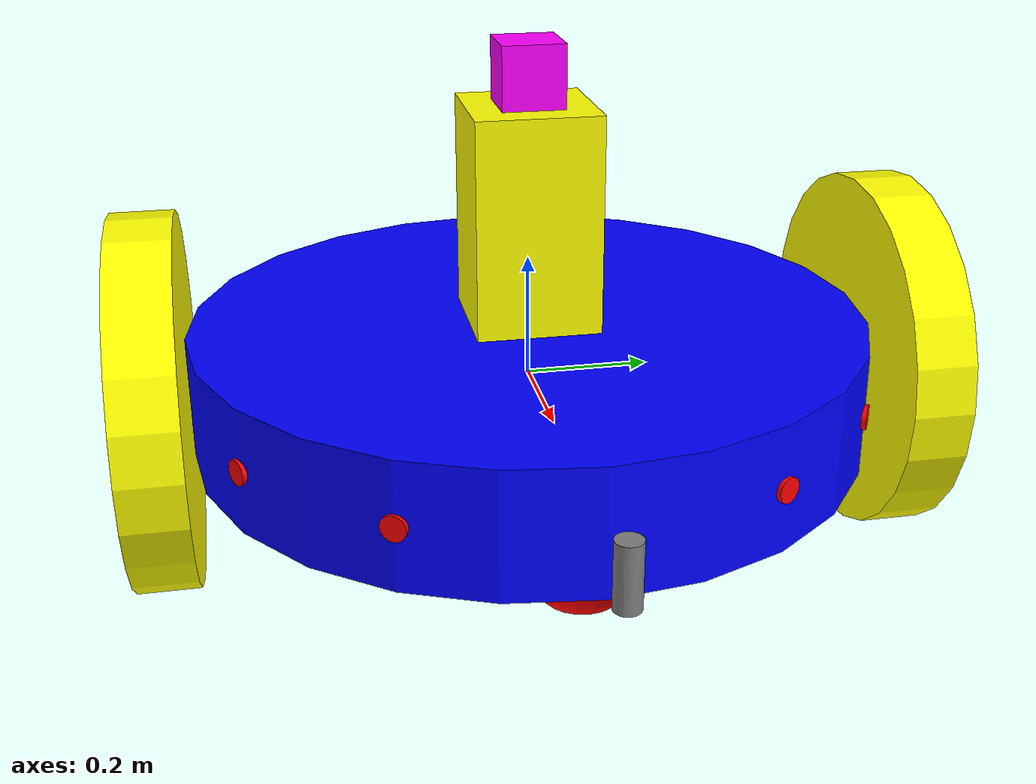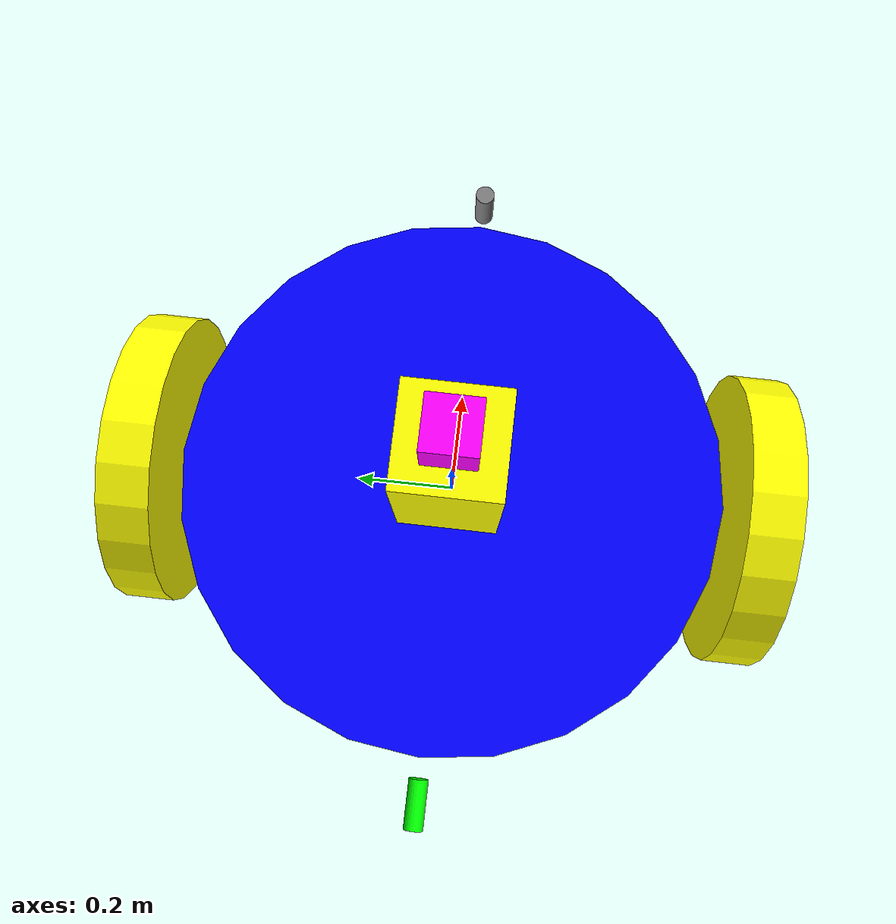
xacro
<?xml version="1.0"?>
<robot name="vc_robot">
  <link name="base_link" />
  <link name="plate">
    <visual>
      <origin rpy="0 0 0" xyz="0 0 0" />
      <geometry>
        <cylinder radius="0.55" length="0.2" />
      </geometry>
      <material name="blue">
        <color rgba="0 0 1 1" />
      </material>
    </visual>
    <collision>
      <origin rpy="0 0 0" xyz="0 0 0" />
      <geometry>
        <cylinder radius="0.55" length="0.2" />
      </geometry>
    </collision>
    <inertial>
      <mass value="0.2" />
      <inertia ixx="0.0158" ixy="0.0" ixz="0.0" iyy="0.0158" iyz="0.0" izz="0.03" />
    </inertial>
  </link>
  <link name="leftwheel">
    <visual>
      <origin rpy="0 0 0" xyz="0 0 0" />
      <geometry>
        <cylinder radius= "0.3"  length= "0.1"  />
      </geometry>
      <material name="yellow">
        <color rgba="1 1 0 1" />
      </material>
    </visual>
    <collision>
      <origin rpy="0 0 0" xyz="0 0 0" />
      <geometry>
        <cylinder radius= "0.3"  length= "0.1"  />
      </geometry>
    </collision>
    <inertial>
      <mass value="0.2" />
      <inertia ixx="0.9624" ixy="0.0" ixz="0.0" iyy="1.5024" iyz="0.0" izz="2.46" />
    </inertial>
  </link>
  <link name="rightwheel">
    <visual>
      <origin rpy="0 0 0" xyz="0 0 0" />
      <geometry>
        <cylinder radius= "0.3"  length= "0.1"  />
      </geometry>
      <material name="yellow">
        <color rgba="1 1 0 1" />
      </material>
    </visual>
    <collision>
      <origin rpy="0 0 0" xyz="0 0 0" />
      <geometry>
        <cylinder radius= "0.3"  length= "0.1"  />
      </geometry>
    </collision>
    <inertial>
      <mass value="0.2" />
      <inertia ixx="0.9624" ixy="0.0" ixz="0.0" iyy="1.5024" iyz="0.0" izz="2.46" />
    </inertial>
  </link>
  <link name="front_mount">
    <visual>
      <origin rpy="0 0 0" xyz="0 0 0" />
      <geometry>
        <sphere radius = ".1"  />
      </geometry>
      <material name="red">
        <color rgba="1 0 0 1" />
      </material>
    </visual>
    <collision>
      <origin rpy="0 0 0" xyz="0 0 0" />
      <geometry>
        <sphere radius = ".2"  />
      </geometry>
    </collision>
    <inertial>
      <mass value="0.2" />
      <inertia ixx="0.9624" ixy="0.0" ixz="0.0" iyy="1.5024" iyz="0.0" izz="2.46" />
    </inertial>
  </link>
  <link name="back_mount">
    <visual>
      <origin rpy="0 0 0" xyz="0 0 0" />
      <geometry>
        <sphere radius = ".1"  />
      </geometry>
      <material name="red">
        <color rgba="1 0 0 1" />
      </material>
    </visual>
    <collision>
      <origin rpy="0 0 0" xyz="0 0 0" />
      <geometry>
        <sphere radius = ".2"  />
      </geometry>
    </collision>
    <inertial>
      <mass value="0.2" />
      <inertia ixx="0.9624" ixy="0.0" ixz="0.0" iyy="1.5024" iyz="0.0" izz="2.46" />
    </inertial>
  </link>
  <link name="stand">
    <visual>
      <origin xyz="0 0 0" rpy="0 0 0" />
      <geometry>
        <box size="0.2 0.2 0.5" />
      </geometry>
      <material name="yellow">
        <color rgba="1 1 0 1" />
      </material>
    </visual>
    <collision>
      <origin rpy="0 0 0" xyz="0 0 0" />
      <geometry>
        <box size="0.2 0.2 0.5" />
      </geometry>
    </collision>
    <inertial>
      <mass value="0.01" />
      <inertia ixx="0.9624" ixy="0.0" ixz="0.0" iyy="1.5024" iyz="0.0" izz="2.46" />
    </inertial>
  </link>
  <link name="hokuyo_link">
    <visual>
      <origin rpy="0 0 0" xyz="0 0 0" />
      <geometry>
        <box size="0.1 0.1 0.1" />
      </geometry>
      <material name="purple">
        <color rgba="1 0 1 1" />
      </material>
    </visual>
    <collision>
      <origin rpy="0 0 0" xyz="0 0 0" />
      <geometry>
        <box size="0.1 0.1 0.1" />
      </geometry>
    </collision>
    <inertial>
      <mass value="0.2" />
      <inertia ixx="0.9624" ixy="0.0" ixz="0.0" iyy="1.5024" iyz="0.0" izz="2.46" />
    </inertial>
  </link>
  <link name="ultrasonic1">
    <visual>
      <origin xyz="0 0 0" rpy="0 1.5708 0" />
      <geometry>
        <cylinder radius="0.02" length="0.01" />
      </geometry>
      <material name="red">
        <color rgba="1 0 0 1" />
      </material>
    </visual>
    <collision>
      <origin xyz="0 0 0" rpy="0 1.5708 0" />
      <geometry>
        <cylinder radius="0.02" length="0.01" />
      </geometry>
    </collision>
    <inertial>
      <mass value="0.01" />
      <inertia ixx="0.00000108" ixy="0.0" ixz="0.0" iyy="0.00000108" iyz="0.0" izz="0.000002" />
    </inertial>
  </link>
  <link name="ultrasonic2">
    <visual>
      <origin xyz="0 0 0" rpy="0 1.5708 0" />
      <geometry>
        <cylinder radius="0.02" length="0.01" />
      </geometry>
      <material name="red">
        <color rgba="1 0 0 1" />
      </material>
    </visual>
    <collision>
      <origin xyz="0 0 0" rpy="0 1.5708 0" />
      <geometry>
        <cylinder radius="0.02" length="0.01" />
      </geometry>
    </collision>
    <inertial>
      <mass value="0.01" />
      <inertia ixx="0.00000108" ixy="0.0" ixz="0.0" iyy="0.00000108" iyz="0.0" izz="0.000002" />
    </inertial>
  </link>
  <link name="ultrasonic3">
    <visual>
      <origin xyz="0 0 0" rpy="0 1.5708 0" />
      <geometry>
        <cylinder radius="0.02" length="0.01" />
      </geometry>
      <material name="red">
        <color rgba="1 0 0 1" />
      </material>
    </visual>
    <collision>
      <origin xyz="0 0 0" rpy="0 1.5708 0" />
      <geometry>
        <cylinder radius="0.02" length="0.01" />
      </geometry>
    </collision>
    <inertial>
      <mass value="0.01" />
      <inertia ixx="0.00000108" ixy="0.0" ixz="0.0" iyy="0.00000108" iyz="0.0" izz="0.000002" />
    </inertial>
  </link>
  <link name="ultrasonic4">
    <visual>
      <origin xyz="0 0 0" rpy="0 1.5708 0" />
      <geometry>
        <cylinder radius="0.02" length="0.01" />
      </geometry>
      <material name="red">
        <color rgba="1 0 0 1" />
      </material>
    </visual>
    <collision>
      <origin xyz="0 0 0" rpy="0 1.5708 0" />
      <geometry>
        <cylinder radius="0.02" length="0.01" />
      </geometry>
    </collision>
    <inertial>
      <mass value="0.01" />
      <inertia ixx="0.00000108" ixy="0.0" ixz="0.0" iyy="0.00000108" iyz="0.0" izz="0.000002" />
    </inertial>
  </link>
  <link name="ultrasonic5">
    <visual>
      <origin xyz="0 0 0" rpy="0 1.5708 0" />
      <geometry>
        <cylinder radius="0.02" length="0.01" />
      </geometry>
      <material name="red">
        <color rgba="1 0 0 1" />
      </material>
    </visual>
    <collision>
      <origin xyz="0 0 0" rpy="0 1.5708 0" />
      <geometry>
        <cylinder radius="0.02" length="0.01" />
      </geometry>
    </collision>
    <inertial>
      <mass value="0.01" />
      <inertia ixx="0.00000108" ixy="0.0" ixz="0.0" iyy="0.00000108" iyz="0.0" izz="0.000002" />
    </inertial>
  </link>
  <link name="ultrasonic6">
    <visual>
      <origin xyz="0 0 0" rpy="0 1.5708 0" />
      <geometry>
        <cylinder radius="0.02" length="0.01" />
      </geometry>
      <material name="red">
        <color rgba="1 0 0 1" />
      </material>
    </visual>
    <collision>
      <origin xyz="0 0 0" rpy="0 1.5708 0" />
      <geometry>
        <cylinder radius="0.02" length="0.01" />
      </geometry>
    </collision>
    <inertial>
      <mass value="0.01" />
      <inertia ixx="0.00000108" ixy="0.0" ixz="0.0" iyy="0.00000108" iyz="0.0" izz="0.000002" />
    </inertial>
  </link>
  <link name="ultrasonic7">
    <visual>
      <origin xyz="0 0 0" rpy="0 1.5708 0" />
      <geometry>
        <cylinder radius="0.02" length="0.01" />
      </geometry>
      <material name="red">
        <color rgba="1 0 0 1" />
      </material>
    </visual>
    <collision>
      <origin xyz="0 0 0" rpy="0 1.5708 0" />
      <geometry>
        <cylinder radius="0.02" length="0.01" />
      </geometry>
    </collision>
    <inertial>
      <mass value="0.01" />
      <inertia ixx="0.00000108" ixy="0.0" ixz="0.0" iyy="0.00000108" iyz="0.0" izz="0.000002" />
    </inertial>
  </link>
  <link name="ultrasonic8">
    <visual>
      <origin xyz="0 0 0" rpy="0 1.5708 0" />
      <geometry>
        <cylinder radius="0.02" length="0.01" />
      </geometry>
      <material name="red">
        <color rgba="1 0 0 1" />
      </material>
    </visual>
    <collision>
      <origin xyz="0 0 0" rpy="0 1.5708 0" />
      <geometry>
        <cylinder radius="0.02" length="0.01" />
      </geometry>
    </collision>
    <inertial>
      <mass value="0.01" />
      <inertia ixx="0.00000108" ixy="0.0" ixz="0.0" iyy="0.00000108" iyz="0.0" izz="0.000002" />
    </inertial>
  </link>
  <link name="stereo_camera">
    <visual>
      <origin xyz="0 0 0" rpy="0 0 0" />
      <geometry>
        <cylinder radius="0.02" length="0.1" />
      </geometry>
      <material name="grey">
        <color rgba="0.5 0.5 0.5 1" />
      </material>
    </visual>
    <collision>
      <origin xyz="0 0 0" rpy="0 0 0" />
      <geometry>
        <cylinder radius="0.02" length="0.1" />
      </geometry>
    </collision>
    <inertial>
      <mass value="0.01" />
      <inertia ixx="0.00000108" ixy="0.0" ixz="0.0" iyy="0.00000108" iyz="0.0" izz="0.000002" />
    </inertial>
  </link>
  <link name="camera_depth"/>
  <link name="monocular_camera">
    <visual>
      <origin xyz="0 0 0" rpy="0 1.5708 0" />
      <geometry>
        <cylinder radius="0.02" length="0.1" />
      </geometry>
      <material name="green">
        <color rgba="0 1 0 1" />
      </material>
    </visual>
    <collision>
      <origin xyz="0 0 0" rpy="0 1.5708 0" />
      <geometry>
        <cylinder radius="0.02" length="0.1" />
      </geometry>
    </collision>
    <inertial>
      <mass value="0.01" />
      <inertia ixx="0.00000108" ixy="0.0" ixz="0.0" iyy="0.00000108" iyz="0.0" izz="0.000002" />
    </inertial>
  </link>
  <joint name="weld" type="fixed">
    <parent link="base_link" />
    <child link="plate" />
    <origin xyz="0 0 0" />
    <axis xyz="0 0 0" />
  </joint>
  <joint name="stereo_connection" type="fixed">
    <parent link="plate" />
    <child link="stereo_camera" />
    <origin xyz="0.65 0 0" rpy="0 0 0" />
    <axis xyz="0 0 0" />
  </joint>
<joint name="camera_depth_connection" type="fixed">
    <parent link="stereo_camera" />
    <child link="camera_depth" />
    <origin xyz="0 0 0.25" rpy="-1.5708 0 -1.5708" />
  </joint>
  <joint name="monocular_connection" type="fixed">
    <parent link="plate" />
    <child link="monocular_camera" />
    <origin xyz="-0.65 0 0" rpy="3.14 3.14 0" />
    <axis xyz="0 0 0" />
  </joint>
  <joint name="ultrasonic1_connection" type="fixed">
    <parent link="plate" />
    <child link="ultrasonic1" />
    <origin xyz="0.275 0.4763 0" rpy="0 0 1.0472" />
    <axis xyz="0 0 0" />
  </joint>
  <joint name="ultrasonic2_connection" type="fixed">
    <parent link="plate" />
    <child link="ultrasonic2" />
    <origin xyz="0.4763 0.275 0" rpy="0 0 0.523599" />
    <axis xyz="0 0 0" />
  </joint>
  <joint name="ultrasonic3_connection" type="fixed">
    <parent link="plate" />
    <child link="ultrasonic3" />
    <origin xyz="0.4763 -0.275 0" rpy="0 0 -0.523599" />
    <axis xyz="0 0 0" />
  </joint>
  <joint name="ultrasonic4_connection" type="fixed">
    <parent link="plate" />
    <child link="ultrasonic4" />
    <origin xyz="0.275 -0.4763 0" rpy="0 0 -1.0472" />
    <axis xyz="0 0 0" />
  </joint>
  <joint name="ultrasonic5_connection" type="fixed">
    <parent link="plate" />
    <child link="ultrasonic5" />
    <origin xyz="-0.275 -0.4763 0" rpy="0 0 -2.094398" />
    <axis xyz="0 0 0" />
  </joint>
  <joint name="ultrasonic6_connection" type="fixed">
    <parent link="plate" />
    <child link="ultrasonic6" />
    <origin xyz="-0.4763 -0.275 0" rpy="0 0 -2.617997" />
    <axis xyz="0 0 0" />
  </joint>
  <joint name="ultrasonic7_connection" type="fixed">
    <parent link="plate" />
    <child link="ultrasonic7" />
    <origin xyz="-0.4763 0.275 0" rpy="0 0 2.617997" />
    <axis xyz="0 0 0" />
  </joint>
  <joint name="ultrasonic8_connection" type="fixed">
    <parent link="plate" />
    <child link="ultrasonic8" />
    <origin xyz="-0.275 0.4763 0" rpy="0 0 2.094398" />
    <axis xyz="0 0 0" />
  </joint>
  <joint name="stand_connection" type="fixed">
    <parent link="plate" />
    <child link="stand" />
    <origin xyz="0 0 0.2" />
    <axis xyz="0 0 0" />
  </joint>
  <joint name="hokuyo" type="fixed">
    <parent link="stand" />
    <child link="hokuyo_link" />
    <origin xyz="0 0 0.3" />
    <axis xyz="0 0 0" />
  </joint>
  <joint name="leftwheel_joint" type="continuous">
    <parent link="plate" />
    <child link="leftwheel" />
    <origin rpy="1.5708 0 0" xyz="0 -0.6 0.0" />
    <axis xyz="0 0 1" />
    <dynamics damping="100" friction="100" />
  </joint>
  <joint name="rightwheel_joint" type="continuous">
    <parent link="plate" />
    <child link="rightwheel" />
    <origin rpy="1.5708 0 0" xyz="0 0.6 0.0" />
    <axis xyz="0 0 1" />
    <dynamics damping="100" friction="100" />
  </joint>
  <joint name="frontmountweld" type="fixed">
    <parent link="plate" />
    <child link="front_mount" />
    <origin xyz="-.4 0 -.1" />
    <axis xyz="0 0 0" />
  </joint>
  <joint name="backmountweld" type="fixed">
    <parent link="plate" />
    <child link="back_mount" />
    <origin xyz=".4 0 -.1" />
    <axis xyz="0 0 0" />
  </joint>
  <gazebo reference="plate">
    <mu1 value="2.0" />
    <mu2 value="4.0" />
    <kp value="1000000000" />
    <kd value="1000000.0" />
    <material>Gazebo/Blue</material>
  </gazebo>
  <gazebo reference="stand">
    <mu1 value="2.0" />
    <mu2 value="4.0" />
    <kp value="1000000000" />
    <kd value="1000000.0" />
    <material>Gazebo/Yellow</material>
  </gazebo>
  <gazebo reference="stereo_camera">
    <mu1 value="2.0" />
    <mu2 value="4.0" />
    <kp value="1000000000" />
    <kd value="1000000.0" />
    <material>Gazebo/Grey</material>
  </gazebo>
  <gazebo reference="monocular_camera">
    <mu1 value="2.0" />
    <mu2 value="4.0" />
    <kp value="1000000000" />
    <kd value="1000000.0" />
    <material>Gazebo/Green</material>
  </gazebo>
  <gazebo reference="ultrasonic1">
    <mu1 value="2.0" />
    <mu2 value="4.0" />
    <kp value="1000000000" />
    <kd value="1000000.0" />
    <material>Gazebo/Red</material>
  </gazebo>
  <gazebo reference="ultrasonic2">
    <mu1 value="2.0" />
    <mu2 value="4.0" />
    <kp value="1000000000" />
    <kd value="1000000.0" />
    <material>Gazebo/Red</material>
  </gazebo>
  <gazebo reference="ultrasonic3">
    <mu1 value="2.0" />
    <mu2 value="4.0" />
    <kp value="1000000000" />
    <kd value="1000000.0" />
    <material>Gazebo/Red</material>
  </gazebo>
  <gazebo reference="ultrasonic4">
    <mu1 value="2.0" />
    <mu2 value="4.0" />
    <kp value="1000000000" />
    <kd value="1000000.0" />
    <material>Gazebo/Red</material>
  </gazebo>
  <gazebo reference="ultrasonic5">
    <mu1 value="2.0" />
    <mu2 value="4.0" />
    <kp value="1000000000" />
    <kd value="1000000.0" />
    <material>Gazebo/Red</material>
  </gazebo>
  <gazebo reference="ultrasonic6">
    <mu1 value="2.0" />
    <mu2 value="4.0" />
    <kp value="1000000000" />
    <kd value="1000000.0" />
    <material>Gazebo/Red</material>
  </gazebo>
  <gazebo reference="ultrasonic7">
    <mu1 value="2.0" />
    <mu2 value="4.0" />
    <kp value="1000000000" />
    <kd value="1000000.0" />
    <material>Gazebo/Red</material>
  </gazebo>
  <gazebo reference="ultrasonic8">
    <mu1 value="2.0" />
    <mu2 value="4.0" />
    <kp value="1000000000" />
    <kd value="1000000.0" />
    <material>Gazebo/Red</material>
  </gazebo>
  <gazebo reference="hokuyo_link">
    <mu1 value="2.0" />
    <mu2 value="4.0" />
    <kp value="1000000000" />
    <kd value="1000000.0" />
    <material>Gazebo/Purple</material>
  </gazebo>
  <gazebo reference="leftwheel">
    <mu1 value="0.2" />
    <mu2 value="0.4" />
    <kp value="1000000000" />
    <kd value="1000000.0" />
    <material>Gazebo/Yellow</material>
  </gazebo>
  <gazebo reference="rightwheel">
    <mu1 value="0.2" />
    <mu2 value="0.4" />
    <kp value="1000000000" />
    <kd value="1000000.0" />
    <material>Gazebo/Yellow</material>
  </gazebo>
  <gazebo reference="front_mount">
    <mu1 value="0.0" />
    <mu2 value="0.0" />
    <kp value="1000000000" />
    <kd value="1000000.0" />
    <material>Gazebo/Red</material>
  </gazebo>
  <gazebo reference="back_mount">
    <mu1 value="0.0" />
    <mu2 value="0.0" />
    <kp value="1000000000" />
    <kd value="1000000.0" />
    <material>Gazebo/Red</material>
  </gazebo>
  <gazebo>
    <plugin name="differential_drive_controller" filename="libgazebo_ros_diff_drive.so">
      <!-- Plugin update rate in Hz -->
      <updateRate>20</updateRate>
      <!-- Name of left joint, defaults to `left_joint` -->
      <leftJoint>leftwheel_joint</leftJoint>
      <!-- Name of right joint, defaults to `right_joint` -->
      <rightJoint>rightwheel_joint</rightJoint>
      <!-- The distance from the center of one wheel to the other, in meters, defaults to 0.34 m -->
      <wheelSeparation>0.5380</wheelSeparation>
      <!-- Diameter of the wheels, in meters, defaults to 0.15 m -->
      <wheelDiameter>0.6</wheelDiameter>
      <!-- Wheel acceleration, in rad/s^2, defaults to 0.0 rad/s^2 -->
      <wheelAcceleration>1.0</wheelAcceleration>
      <!-- Maximum torque which the wheels can produce, in Nm, defaults to 5 Nm -->
      <wheelTorque>20</wheelTorque>
      <!-- Topic to receive geometry_msgs/Twist message commands, defaults to `cmd_vel` -->
      <commandTopic>vc_robot/cmd_vel</commandTopic>
      <!-- Topic to publish nav_msgs/Odometry messages, defaults to `odom` -->
      <odometryTopic>odom</odometryTopic>
      <!-- Odometry frame, defaults to `odom` -->
      <odometryFrame>odom</odometryFrame>
      <!-- Robot frame to calculate odometry from, defaults to `base_footprint` -->
      <robotBaseFrame>base_link</robotBaseFrame>
      <!-- Odometry source, 0 for ENCODER, 1 for WORLD, defaults to WORLD -->
      <odometrySource>1</odometrySource>
      <!-- Set to true to publish transforms for the wheel links, defaults to false -->
      <publishWheelTF>false</publishWheelTF>
      <!-- Set to true to publish transforms for the odometry, defaults to true -->
      <publishOdom>true</publishOdom>
      <!-- Set to true to publish sensor_msgs/JointState on /joint_states for the wheel joints, defaults to false -->
      <publishWheelJointState>false</publishWheelJointState>
      <!-- Set to true to swap right and left wheels, defaults to true -->
      <legacyMode>true</legacyMode>
      <pose_covariance_diagonal>[1.0, 1.0, 0.0, 0.0, 0.0, 1.0]</pose_covariance_diagonal>
      <twist_covariance_diagonal>[0.01, 0.0, 0.0, 0.0, 0.0, 0.1]</twist_covariance_diagonal>
      <publishTf>1</publishTf>
      <publishOdomTF>true</publishOdomTF>
    </plugin>
  </gazebo>
  <gazebo reference="stereo_camera">
    <sensor name="stereo_camera" type="depth">
    <alwaysOn>true</alwaysOn>
<visualize>true</visualize>
      <update_rate>30.0</update_rate>
      <camera>
        <horizontal_fov>1.3962634</horizontal_fov>
        <image>
          <width>640</width>
          <height>480</height>
          <format>R8G8B8</format>
        </image>
        <clip>
          <near>0.01</near>
          <far>100</far>
        </clip>
        <noise>
          <type>gaussian</type>
          <stddev>0.007</stddev>
        </noise>
      </camera>
      <plugin name="stereo_camera_controller" filename="libgazebo_ros_openni_kinect.so">
        <alwaysOn>true</alwaysOn>
        <updateRate>30.0</updateRate>
        <cameraName>stereo_camera_ir</cameraName>
        <imageTopicName>/vc_robot/stereo_camera/color/image_raw</imageTopicName>
        <cameraInfoTopicName>/vc_robot/stereo_camera/color/camera_info</cameraInfoTopicName>
        <depthImageTopicName>/vc_robot/stereo_camera/depth/image_raw</depthImageTopicName>
        <depthImageInfoTopicName>/vc_robot/stereo_camera/depth/camera_info</depthImageInfoTopicName>
        <pointCloudTopicName>/vc_robot/stereo_camera/depth/points</pointCloudTopicName>
        <frameName>camera_depth</frameName>
        <pointCloudCutoff>0.8</pointCloudCutoff>
        <pointCloudCutoffMax>3.5</pointCloudCutoffMax>
        <distortionK1>0.00000001</distortionK1>
        <distortionK2>0.00000001</distortionK2>
        <distortionK3>0.00000001</distortionK3>
        <distortionT1>0.00000001</distortionT1>
        <distortionT2>0.00000001</distortionT2>
        <CxPrime>0</CxPrime>
        <Cx>0</Cx>
        <Cy>0</Cy>
        <focalLength>0</focalLength>
        <hackBaseline>0</hackBaseline>
      </plugin>
    </sensor>
  </gazebo>
  <gazebo reference="monocular_camera">
    <sensor type="camera" name="monocular_camera_sensor">
      <update_rate>30.0</update_rate>
      <camera name="head">
        <horizontal_fov>1.3962634</horizontal_fov>
        <image>
          <width>800</width>
          <height>800</height>
          <format>R8G8B8</format>
        </image>
        <clip>
          <near>0.02</near>
          <far>300</far>
        </clip>
        <noise>
          <type>gaussian</type>
          <mean>0.0</mean>
          <stddev>0.007</stddev>
        </noise>
      </camera>
      <plugin name="camera_controller" filename="libgazebo_ros_camera.so">
        <alwaysOn>true</alwaysOn>
        <updateRate>30.0</updateRate>
        <cameraName>vc_robot/monocular_camera_sensor</cameraName>
        <imageTopicName>image_raw</imageTopicName>
        <cameraInfoTopicName>camera_info</cameraInfoTopicName>
        <frameName>monocular_camera</frameName>
        <hackBaseline>0.07</hackBaseline>
        <distortionK1>0.0</distortionK1>
        <distortionK2>0.0</distortionK2>
        <distortionK3>0.0</distortionK3>
        <distortionT1>0.0</distortionT1>
        <distortionT2>0.0</distortionT2>
        <CxPrime>0</CxPrime>
        <Cx>0</Cx>
        <Cy>0</Cy>
      </plugin>
    </sensor>
  </gazebo>
  <gazebo reference="ultrasonic1">
    <sensor type="ray" name="ultrasonic1_sensor">
      <visualize>true</visualize>
      <update_rate>10</update_rate>
      <ray>
        <scan>
          <horizontal>
            <samples>5</samples>
            <min_angle>-0.7854</min_angle>
            <max_angle>0.7854</max_angle>
          </horizontal>
          <vertical>
            <samples>5</samples>
            <min_angle>-0.7854</min_angle>
            <max_angle>0.7854</max_angle>
          </vertical>
        </scan>
        <range>
          <min>0.02</min>
          <max>0.8</max>
        </range>
      </ray>
      <plugin filename="libgazebo_ros_range.so" name="gazebo_ros_range">
        <alwaysOn>true</alwaysOn>
        <updateRate>10</updateRate>
        <topicName>vc_robot/ultrasonic1</topicName>
        <frameName>ultrasonic1</frameName>
        <radiation>ultrasound</radiation>
        <fov>1.57</fov>
      </plugin>
    </sensor>
  </gazebo>
  <gazebo reference="ultrasonic2">
    <sensor type="ray" name="ultrasonic2_sensor">
      <visualize>true</visualize>
      <update_rate>10</update_rate>
      <ray>
        <scan>
          <horizontal>
            <samples>5</samples>
            <min_angle>-0.7854</min_angle>
            <max_angle>0.7854</max_angle>
          </horizontal>
          <vertical>
            <samples>5</samples>
            <min_angle>-0.7854</min_angle>
            <max_angle>0.7854</max_angle>
          </vertical>
        </scan>
        <range>
          <min>0.02</min>
          <max>0.8</max>
        </range>
      </ray>
      <plugin filename="libgazebo_ros_range.so" name="gazebo_ros_range">
        <alwaysOn>true</alwaysOn>
        <updateRate>10</updateRate>
        <topicName>vc_robot/ultrasonic2</topicName>
        <frameName>ultrasonic2</frameName>
        <radiation>ultrasound</radiation>
        <fov>1.57</fov>
      </plugin>
    </sensor>
  </gazebo>
  <gazebo reference="ultrasonic3">
    <sensor type="ray" name="ultrasonic3_sensor">
      <visualize>true</visualize>
      <update_rate>10</update_rate>
      <ray>
        <scan>
          <horizontal>
            <samples>5</samples>
            <min_angle>-0.7854</min_angle>
            <max_angle>0.7854</max_angle>
          </horizontal>
          <vertical>
            <samples>5</samples>
            <min_angle>-0.7854</min_angle>
            <max_angle>0.7854</max_angle>
          </vertical>
        </scan>
        <range>
          <min>0.02</min>
          <max>0.8</max>
        </range>
      </ray>
      <plugin filename="libgazebo_ros_range.so" name="gazebo_ros_range">
        <alwaysOn>true</alwaysOn>
        <updateRate>10</updateRate>
        <topicName>vc_robot/ultrasonic3</topicName>
        <frameName>ultrasonic3</frameName>
        <radiation>ultrasound</radiation>
        <fov>1.57</fov>
      </plugin>
    </sensor>
  </gazebo>
  <gazebo reference="ultrasonic4">
    <sensor type="ray" name="ultrasonic4_sensor">
      <visualize>true</visualize>
      <update_rate>10</update_rate>
      <ray>
        <scan>
          <horizontal>
            <samples>5</samples>
            <min_angle>-0.7854</min_angle>
            <max_angle>0.7854</max_angle>
          </horizontal>
          <vertical>
            <samples>5</samples>
            <min_angle>-0.7854</min_angle>
            <max_angle>0.7854</max_angle>
          </vertical>
        </scan>
        <range>
          <min>0.02</min>
          <max>0.8</max>
        </range>
      </ray>
      <plugin filename="libgazebo_ros_range.so" name="gazebo_ros_range">
        <alwaysOn>true</alwaysOn>
        <updateRate>10</updateRate>
        <topicName>vc_robot/ultrasonic4</topicName>
        <frameName>ultrasonic4</frameName>
        <radiation>ultrasound</radiation>
        <fov>1.57</fov>
      </plugin>
    </sensor>
  </gazebo>
  <gazebo reference="ultrasonic5">
    <sensor type="ray" name="ultrasonic5_sensor">
      <visualize>true</visualize>
      <update_rate>10</update_rate>
      <ray>
        <scan>
          <horizontal>
            <samples>5</samples>
            <min_angle>-0.7854</min_angle>
            <max_angle>0.7854</max_angle>
          </horizontal>
          <vertical>
            <samples>5</samples>
            <min_angle>-0.7854</min_angle>
            <max_angle>0.7854</max_angle>
          </vertical>
        </scan>
        <range>
          <min>0.02</min>
          <max>0.8</max>
        </range>
      </ray>
      <plugin filename="libgazebo_ros_range.so" name="gazebo_ros_range">
        <alwaysOn>true</alwaysOn>
        <updateRate>10</updateRate>
        <topicName>vc_robot/ultrasonic5</topicName>
        <frameName>ultrasonic5</frameName>
        <radiation>ultrasound</radiation>
        <fov>1.57</fov>
      </plugin>
    </sensor>
  </gazebo>
  <gazebo reference="ultrasonic6">
    <sensor type="ray" name="ultrasonic6_sensor">
      <visualize>true</visualize>
      <update_rate>10</update_rate>
      <ray>
        <scan>
          <horizontal>
            <samples>5</samples>
            <min_angle>-0.7854</min_angle>
            <max_angle>0.7854</max_angle>
          </horizontal>
          <vertical>
            <samples>5</samples>
            <min_angle>-0.7854</min_angle>
            <max_angle>0.7854</max_angle>
          </vertical>
        </scan>
        <range>
          <min>0.02</min>
          <max>0.8</max>
        </range>
      </ray>
      <plugin filename="libgazebo_ros_range.so" name="gazebo_ros_range">
        <alwaysOn>true</alwaysOn>
        <updateRate>10</updateRate>
        <topicName>vc_robot/ultrasonic6</topicName>
        <frameName>ultrasonic6</frameName>
        <radiation>ultrasound</radiation>
        <fov>1.57</fov>
      </plugin>
    </sensor>
  </gazebo>
  <gazebo reference="ultrasonic7">
    <sensor type="ray" name="ultrasonic7_sensor">
      <visualize>true</visualize>
      <update_rate>10</update_rate>
      <ray>
        <scan>
          <horizontal>
            <samples>5</samples>
            <min_angle>-0.7854</min_angle>
            <max_angle>0.7854</max_angle>
          </horizontal>
          <vertical>
            <samples>5</samples>
            <min_angle>-0.7854</min_angle>
            <max_angle>0.7854</max_angle>
          </vertical>
        </scan>
        <range>
          <min>0.02</min>
          <max>0.8</max>
        </range>
      </ray>
      <plugin filename="libgazebo_ros_range.so" name="gazebo_ros_range">
        <alwaysOn>true</alwaysOn>
        <updateRate>10</updateRate>
        <topicName>vc_robot/ultrasonic7</topicName>
        <frameName>ultrasonic7</frameName>
        <radiation>ultrasound</radiation>
        <fov>1.57</fov>
      </plugin>
    </sensor>
  </gazebo>
  <gazebo reference="ultrasonic8">
    <sensor type="ray" name="ultrasonic8_sensor">
      <visualize>true</visualize>
      <update_rate>10</update_rate>
      <ray>
        <scan>
          <horizontal>
            <samples>5</samples>
            <min_angle>-0.7854</min_angle>
            <max_angle>0.7854</max_angle>
          </horizontal>
          <vertical>
            <samples>5</samples>
            <min_angle>-0.7854</min_angle>
            <max_angle>0.7854</max_angle>
          </vertical>
        </scan>
        <range>
          <min>0.02</min>
          <max>0.8</max>
        </range>
      </ray>
      <plugin filename="libgazebo_ros_range.so" name="gazebo_ros_range">
        <alwaysOn>true</alwaysOn>
        <updateRate>10</updateRate>
        <topicName>vc_robot/ultrasonic8</topicName>
        <frameName>ultrasonic8</frameName>
        <radiation>ultrasound</radiation>
        <fov>1.57</fov>
      </plugin>
    </sensor>
  </gazebo>
  <gazebo reference="hokuyo_link">
    <sensor type="gpu_ray" name="head_hokuyo_sensor">
      <pose>0 0 0 0 0 0</pose>
      <visualize>true</visualize>
      <update_rate>40</update_rate>
      <ray>
        <scan>
          <horizontal>
            <samples>720</samples>
            <resolution>1</resolution>
            <min_angle>-1.570796</min_angle>
            <max_angle>1.570796</max_angle>
          </horizontal>
        </scan>
        <range>
          <min>0.10</min>
          <max>30.0</max>
          <resolution>0.01</resolution>
        </range>
        <noise>
          <type>gaussian</type>
          <mean>0.0</mean>
          <stddev>0.01</stddev>
        </noise>
      </ray>
      <plugin name="gazebo_ros_head_hokuyo_controller" filename="libgazebo_ros_gpu_laser.so">
        <topicName>/vc_robot/laser/scan</topicName>
        <frameName>hokuyo_link</frameName>
      </plugin>
    </sensor>
  </gazebo>
</robot>
